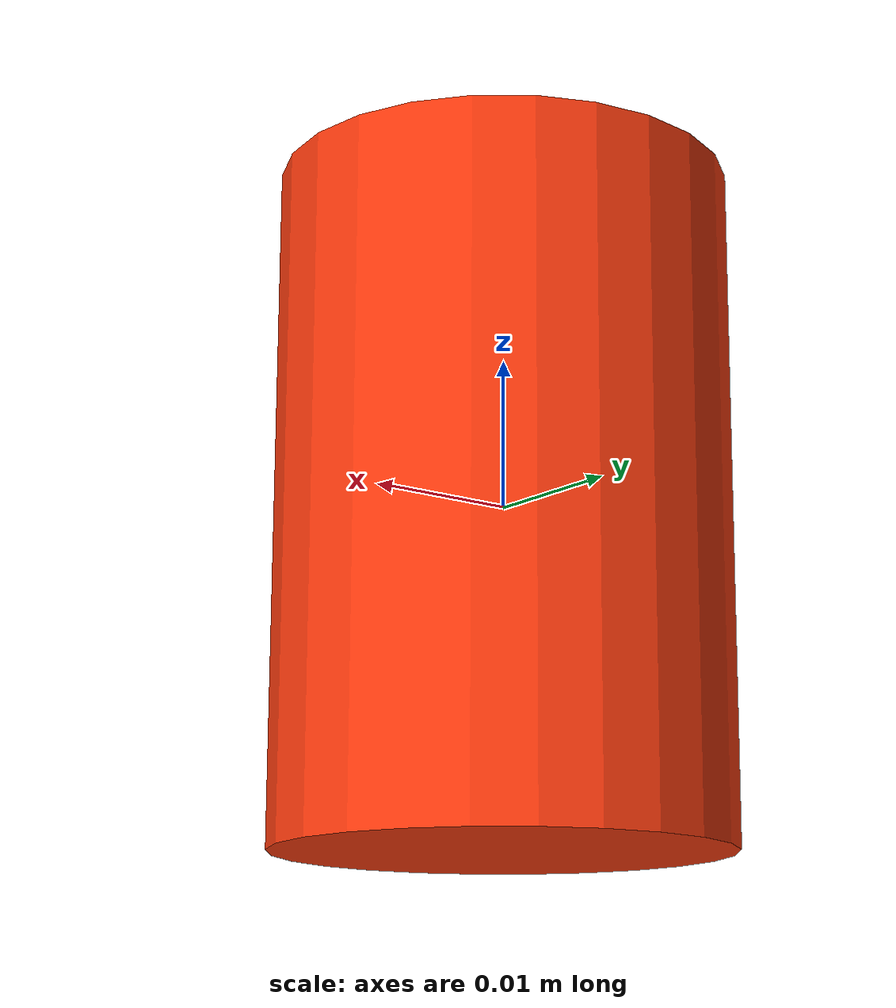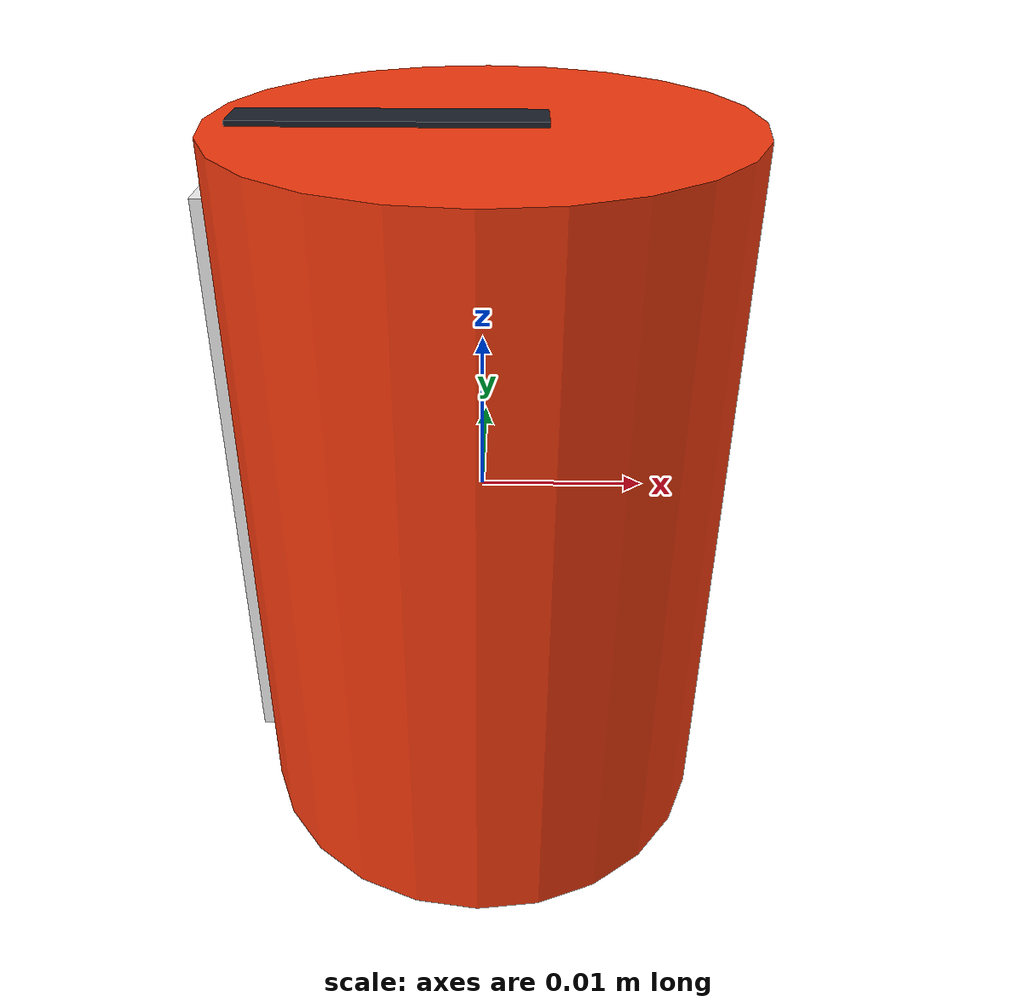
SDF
<?xml version="1.0"?>
<sdf version="1.9">
  <model name="pick_object">
    <static>false</static>
    <self_collide>false</self_collide>
    <allow_auto_disable>false</allow_auto_disable>
    <link name="object_link">
      <inertial>
        <mass>0.030</mass>
        <inertia>
          <ixx>0.00000675</ixx>
          <iyy>0.00000675</iyy>
          <izz>0.000003375</izz>
          <ixy>0</ixy>
          <ixz>0</ixz>
          <iyz>0</iyz>
        </inertia>
      </inertial>
      <collision name="pick_object_collision_0">
        <pose>0 0 -0.015 0 0 0</pose>
        <geometry>
          <cylinder>
            <radius>0.015</radius>
            <length>0.015</length>
          </cylinder>
        </geometry>
        <surface>
          <friction>
            <ode>
              <mu>0.85</mu>
              <mu2>0.85</mu2>
              <slip1>0</slip1>
              <slip2>0</slip2>
            </ode>
          </friction>
          <contact>
            <collide_without_contact>false</collide_without_contact>
            <ode>
              <kp>100000</kp>
              <kd>1.0</kd>
              <max_vel>0.01</max_vel>
              <min_depth>0.0001</min_depth>
            </ode>
          </contact>
        </surface>
      </collision>
      <collision name="pick_object_collision_1">
        <pose>0 0 0 0 0 0</pose>
        <geometry>
          <cylinder>
            <radius>0.015</radius>
            <length>0.015</length>
          </cylinder>
        </geometry>
        <surface>
          <friction>
            <ode>
              <mu>0.85</mu>
              <mu2>0.85</mu2>
              <slip1>0</slip1>
              <slip2>0</slip2>
            </ode>
          </friction>
          <contact>
            <collide_without_contact>false</collide_without_contact>
            <ode>
              <kp>100000</kp>
              <kd>1.0</kd>
              <max_vel>0.01</max_vel>
              <min_depth>0.0001</min_depth>
            </ode>
          </contact>
        </surface>
      </collision>
      <collision name="pick_object_collision_2">
        <pose>0 0 0.015 0 0 0</pose>
        <geometry>
          <cylinder>
            <radius>0.015</radius>
            <length>0.015</length>
          </cylinder>
        </geometry>
        <surface>
          <friction>
            <ode>
              <mu>0.85</mu>
              <mu2>0.85</mu2>
              <slip1>0</slip1>
              <slip2>0</slip2>
            </ode>
          </friction>
          <contact>
            <collide_without_contact>false</collide_without_contact>
            <ode>
              <kp>100000</kp>
              <kd>1.0</kd>
              <max_vel>0.01</max_vel>
              <min_depth>0.0001</min_depth>
            </ode>
          </contact>
        </surface>
      </collision>
      <visual name="pick_object_visual">
        <geometry>
          <cylinder>
            <radius>0.015</radius>
            <length>0.045</length>
          </cylinder>
        </geometry>
        <material>
          <diffuse>0.95 0.22 0.05 1</diffuse>
          <ambient>0.5 0.08 0.02 1</ambient>
        </material>
      </visual>
      <sensor name="pick_object_contact_sensor" type="contact">
        <contact>
          <collision>pick_object_collision_0</collision>
          <collision>pick_object_collision_1</collision>
          <collision>pick_object_collision_2</collision>
          <topic>/pick_object/contacts</topic>
        </contact>
        <always_on>true</always_on>
        <update_rate>200</update_rate>
      </sensor>
      <visual name="orientation_side_mark">
        <pose>-0.0151 0 0 0 0 0</pose>
        <geometry>
          <box>
            <size>0.001 0.005 0.038</size>
          </box>
        </geometry>
        <material>
          <diffuse>0.95 0.95 0.95 1</diffuse>
          <ambient>0.95 0.95 0.95 1</ambient>
        </material>
      </visual>
      <visual name="orientation_top_mark">
        <pose>-0.005 0 0.0226 0 0 0</pose>
        <geometry>
          <box>
            <size>0.017 0.003 0.0004</size>
          </box>
        </geometry>
        <material>
          <diffuse>0.10 0.12 0.16 1</diffuse>
          <ambient>0.10 0.12 0.16 1</ambient>
        </material>
      </visual>
    </link>
    <plugin filename="gz-sim-pose-publisher-system" name="gz::sim::systems::PosePublisher">
      <publish_model_pose>true</publish_model_pose>
      <publish_link_pose>true</publish_link_pose>
      <publish_collision_pose>false</publish_collision_pose>
      <publish_visual_pose>false</publish_visual_pose>
      <use_pose_vector_msg>true</use_pose_vector_msg>
      <update_frequency>100</update_frequency>
      <topic>/pick_object/pose</topic>
    </plugin>
  </model>
</sdf>
